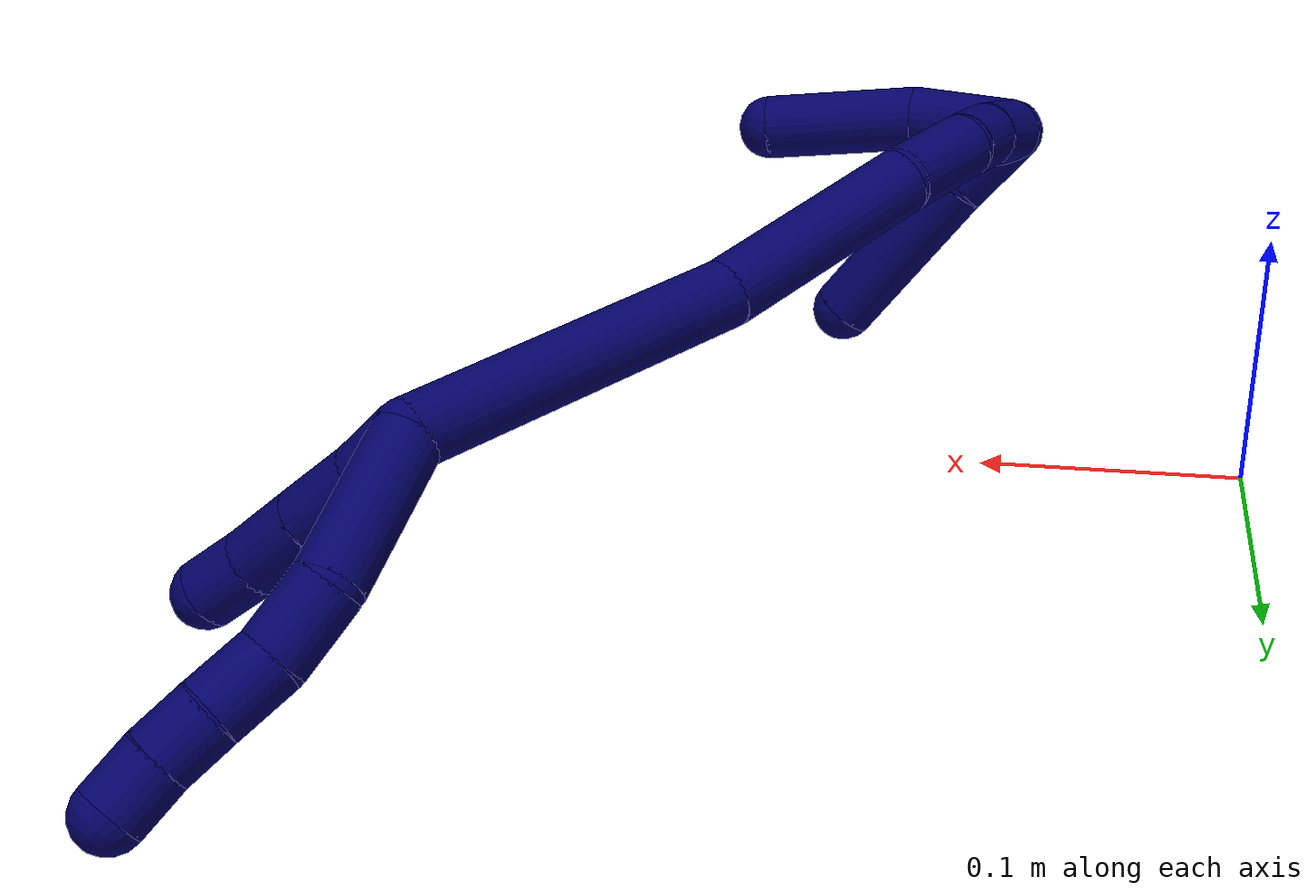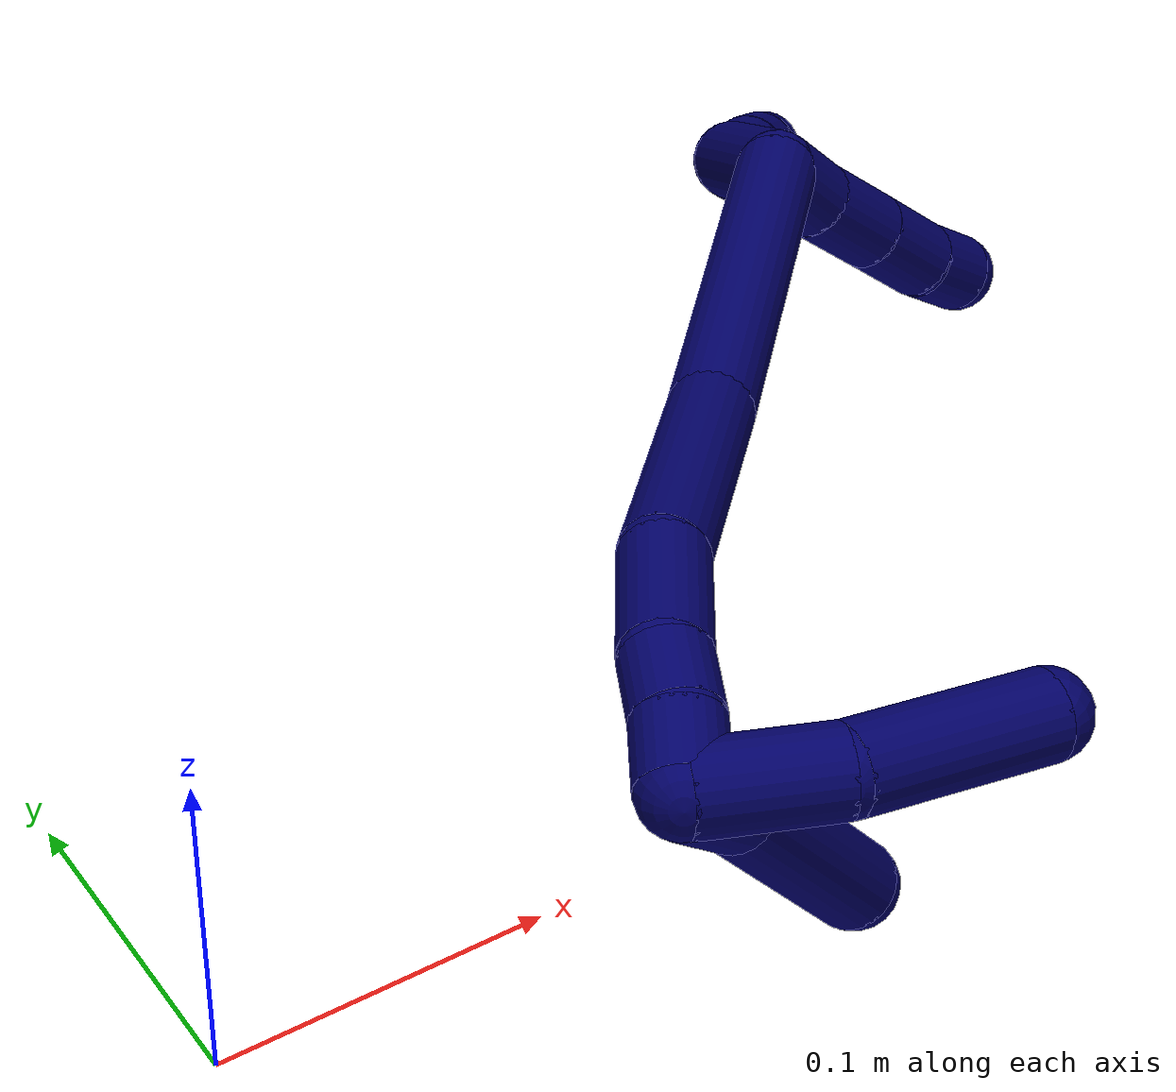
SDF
<sdf version="1.7">
 <world name="default">
  <model name="7">
   <static>0</static>
   <link name="7">
    <collision name="collision-cylinder-e_1_2_8">
     <pose>-0.006009 -0.004843 0.026787 0.17887 -0.217264 -0.019559</pose>
     <geometry><cylinder><radius>0.0125</radius><length>0.055753</length></cylinder></geometry>
     <surface>
      <friction><ode><mu>1.16</mu><mu2>1.16</mu2><slip1>0</slip1><slip2>0</slip2></ode></friction>
      <contact><ode><kp>1e+06</kp><kd>1</kd><max_vel>0</max_vel><min_depth>0.001</min_depth></ode></contact>
     </surface>
    </collision>
    <visual name="visual-cylinder-e_1_2_8">
     <pose>-0.006009 -0.004843 0.026787 0.17887 -0.217264 -0.019559</pose>
     <geometry><cylinder><radius>0.0125</radius><length>0.055753</length></cylinder></geometry>
     <material><ambient>0.003922 0 0.403922 1</ambient></material>
    </visual>
    <collision name="collision-cylinder-e_2_8_9">
     <pose>-0.015944 -0.007895 0.067108 -0.131578 -0.279992 0.018568</pose>
     <geometry><cylinder><radius>0.0125</radius><length>0.028411</length></cylinder></geometry>
     <surface>
      <friction><ode><mu>1.16</mu><mu2>1.16</mu2><slip1>0</slip1><slip2>0</slip2></ode></friction>
      <contact><ode><kp>1e+06</kp><kd>1</kd><max_vel>0</max_vel><min_depth>0.001</min_depth></ode></contact>
     </surface>
    </collision>
    <visual name="visual-cylinder-e_2_8_9">
     <pose>-0.015944 -0.007895 0.067108 -0.131578 -0.279992 0.018568</pose>
     <geometry><cylinder><radius>0.0125</radius><length>0.028411</length></cylinder></geometry>
     <material><ambient>0.003922 0 0.403922 1</ambient></material>
    </visual>
    <collision name="collision-cylinder-e_3_9_10">
     <pose>-0.020748 -0.003612 0.092613 -0.205236 -0.07177 0.007394</pose>
     <geometry><cylinder><radius>0.0125</radius><length>0.024517</length></cylinder></geometry>
     <surface>
      <friction><ode><mu>1.16</mu><mu2>1.16</mu2><slip1>0</slip1><slip2>0</slip2></ode></friction>
      <contact><ode><kp>1e+06</kp><kd>1</kd><max_vel>0</max_vel><min_depth>0.001</min_depth></ode></contact>
     </surface>
    </collision>
    <visual name="visual-cylinder-e_3_9_10">
     <pose>-0.020748 -0.003612 0.092613 -0.205236 -0.07177 0.007394</pose>
     <geometry><cylinder><radius>0.0125</radius><length>0.024517</length></cylinder></geometry>
     <material><ambient>0.003922 0 0.403922 1</ambient></material>
    </visual>
    <collision name="collision-cylinder-e_4_10_11">
     <pose>-0.023094 0.001494 0.114423 -0.259699 -0.14305 0.018712</pose>
     <geometry><cylinder><radius>0.0125</radius><length>0.020573</length></cylinder></geometry>
     <surface>
      <friction><ode><mu>1.16</mu><mu2>1.16</mu2><slip1>0</slip1><slip2>0</slip2></ode></friction>
      <contact><ode><kp>1e+06</kp><kd>1</kd><max_vel>0</max_vel><min_depth>0.001</min_depth></ode></contact>
     </surface>
    </collision>
    <visual name="visual-cylinder-e_4_10_11">
     <pose>-0.023094 0.001494 0.114423 -0.259699 -0.14305 0.018712</pose>
     <geometry><cylinder><radius>0.0125</radius><length>0.020573</length></cylinder></geometry>
     <material><ambient>0.003922 0 0.403922 1</ambient></material>
    </visual>
    <collision name="collision-cylinder-e_5_11_6">
     <pose>-0.026726 0.005723 0.134278 -0.159781 -0.210367 0.016904</pose>
     <geometry><cylinder><radius>0.0125</radius><length>0.020746</length></cylinder></geometry>
     <surface>
      <friction><ode><mu>1.16</mu><mu2>1.16</mu2><slip1>0</slip1><slip2>0</slip2></ode></friction>
      <contact><ode><kp>1e+06</kp><kd>1</kd><max_vel>0</max_vel><min_depth>0.001</min_depth></ode></contact>
     </surface>
    </collision>
    <visual name="visual-cylinder-e_5_11_6">
     <pose>-0.026726 0.005723 0.134278 -0.159781 -0.210367 0.016904</pose>
     <geometry><cylinder><radius>0.0125</radius><length>0.020746</length></cylinder></geometry>
     <material><ambient>0.003922 0 0.403922 1</ambient></material>
    </visual>
    <collision name="collision-cylinder-e_1_2_12">
     <pose>-0.005512 0.007273 0.006583 -0.835168 -0.511922 0.231187</pose>
     <geometry><cylinder><radius>0.0125</radius><length>0.022504</length></cylinder></geometry>
     <surface>
      <friction><ode><mu>1.16</mu><mu2>1.16</mu2><slip1>0</slip1><slip2>0</slip2></ode></friction>
      <contact><ode><kp>1e+06</kp><kd>1</kd><max_vel>0</max_vel><min_depth>0.001</min_depth></ode></contact>
     </surface>
    </collision>
    <visual name="visual-cylinder-e_1_2_12">
     <pose>-0.005512 0.007273 0.006583 -0.835168 -0.511922 0.231187</pose>
     <geometry><cylinder><radius>0.0125</radius><length>0.022504</length></cylinder></geometry>
     <material><ambient>0.003922 0 0.403922 1</ambient></material>
    </visual>
    <collision name="collision-cylinder-e_2_12_13">
     <pose>-0.01706 0.024754 0.021368 -0.893911 -0.431917 0.20953</pose>
     <geometry><cylinder><radius>0.0125</radius><length>0.02884</length></cylinder></geometry>
     <surface>
      <friction><ode><mu>1.16</mu><mu2>1.16</mu2><slip1>0</slip1><slip2>0</slip2></ode></friction>
      <contact><ode><kp>1e+06</kp><kd>1</kd><max_vel>0</max_vel><min_depth>0.001</min_depth></ode></contact>
     </surface>
    </collision>
    <visual name="visual-cylinder-e_2_12_13">
     <pose>-0.01706 0.024754 0.021368 -0.893911 -0.431917 0.20953</pose>
     <geometry><cylinder><radius>0.0125</radius><length>0.02884</length></cylinder></geometry>
     <material><ambient>0.003922 0 0.403922 1</ambient></material>
    </visual>
    <collision name="collision-cylinder-e_3_13_14">
     <pose>-0.02889 0.044568 0.037425 -0.88536 -0.436842 0.209674</pose>
     <geometry><cylinder><radius>0.0125</radius><length>0.027389</length></cylinder></geometry>
     <surface>
      <friction><ode><mu>1.16</mu><mu2>1.16</mu2><slip1>0</slip1><slip2>0</slip2></ode></friction>
      <contact><ode><kp>1e+06</kp><kd>1</kd><max_vel>0</max_vel><min_depth>0.001</min_depth></ode></contact>
     </surface>
    </collision>
    <visual name="visual-cylinder-e_3_13_14">
     <pose>-0.02889 0.044568 0.037425 -0.88536 -0.436842 0.209674</pose>
     <geometry><cylinder><radius>0.0125</radius><length>0.027389</length></cylinder></geometry>
     <material><ambient>0.003922 0 0.403922 1</ambient></material>
    </visual>
    <collision name="collision-cylinder-e_4_14_5">
     <pose>-0.038072 0.061364 0.052344 -0.794192 -0.324294 0.136991</pose>
     <geometry><cylinder><radius>0.0125</radius><length>0.021268</length></cylinder></geometry>
     <surface>
      <friction><ode><mu>1.16</mu><mu2>1.16</mu2><slip1>0</slip1><slip2>0</slip2></ode></friction>
      <contact><ode><kp>1e+06</kp><kd>1</kd><max_vel>0</max_vel><min_depth>0.001</min_depth></ode></contact>
     </surface>
    </collision>
    <visual name="visual-cylinder-e_4_14_5">
     <pose>-0.038072 0.061364 0.052344 -0.794192 -0.324294 0.136991</pose>
     <geometry><cylinder><radius>0.0125</radius><length>0.021268</length></cylinder></geometry>
     <material><ambient>0.003922 0 0.403922 1</ambient></material>
    </visual>
    <collision name="collision-cylinder-e_1_2_15">
     <pose>-0.019251 -0.009684 -0.062572 2.98805 -0.295161 -2.18658</pose>
     <geometry><cylinder><radius>0.0125</radius><length>0.132357</length></cylinder></geometry>
     <surface>
      <friction><ode><mu>1.16</mu><mu2>1.16</mu2><slip1>0</slip1><slip2>0</slip2></ode></friction>
      <contact><ode><kp>1e+06</kp><kd>1</kd><max_vel>0</max_vel><min_depth>0.001</min_depth></ode></contact>
     </surface>
    </collision>
    <visual name="visual-cylinder-e_1_2_15">
     <pose>-0.019251 -0.009684 -0.062572 2.98805 -0.295161 -2.18658</pose>
     <geometry><cylinder><radius>0.0125</radius><length>0.132357</length></cylinder></geometry>
     <material><ambient>0.003922 0 0.403922 1</ambient></material>
    </visual>
    <collision name="collision-cylinder-e_2_15_16">
     <pose>-0.044618 -0.026095 -0.168106 2.98628 -0.139722 -1.4648</pose>
     <geometry><cylinder><radius>0.0125</radius><length>0.087826</length></cylinder></geometry>
     <surface>
      <friction><ode><mu>1.16</mu><mu2>1.16</mu2><slip1>0</slip1><slip2>0</slip2></ode></friction>
      <contact><ode><kp>1e+06</kp><kd>1</kd><max_vel>0</max_vel><min_depth>0.001</min_depth></ode></contact>
     </surface>
    </collision>
    <visual name="visual-cylinder-e_2_15_16">
     <pose>-0.044618 -0.026095 -0.168106 2.98628 -0.139722 -1.4648</pose>
     <geometry><cylinder><radius>0.0125</radius><length>0.087826</length></cylinder></geometry>
     <material><ambient>0.003922 0 0.403922 1</ambient></material>
    </visual>
    <collision name="collision-cylinder-e_3_16_17">
     <pose>-0.056695 -0.032251 -0.229852 -3.11124 -0.307176 2.94611</pose>
     <geometry><cylinder><radius>0.0125</radius><length>0.039433</length></cylinder></geometry>
     <surface>
      <friction><ode><mu>1.16</mu><mu2>1.16</mu2><slip1>0</slip1><slip2>0</slip2></ode></friction>
      <contact><ode><kp>1e+06</kp><kd>1</kd><max_vel>0</max_vel><min_depth>0.001</min_depth></ode></contact>
     </surface>
    </collision>
    <visual name="visual-cylinder-e_3_16_17">
     <pose>-0.056695 -0.032251 -0.229852 -3.11124 -0.307176 2.94611</pose>
     <geometry><cylinder><radius>0.0125</radius><length>0.039433</length></cylinder></geometry>
     <material><ambient>0.003922 0 0.403922 1</ambient></material>
    </visual>
    <collision name="collision-cylinder-e_4_17_18">
     <pose>-0.06697 -0.029752 -0.257604 -2.92973 -0.439566 2.25312</pose>
     <geometry><cylinder><radius>0.0125</radius><length>0.020271</length></cylinder></geometry>
     <surface>
      <friction><ode><mu>1.16</mu><mu2>1.16</mu2><slip1>0</slip1><slip2>0</slip2></ode></friction>
      <contact><ode><kp>1e+06</kp><kd>1</kd><max_vel>0</max_vel><min_depth>0.001</min_depth></ode></contact>
     </surface>
    </collision>
    <visual name="visual-cylinder-e_4_17_18">
     <pose>-0.06697 -0.029752 -0.257604 -2.92973 -0.439566 2.25312</pose>
     <geometry><cylinder><radius>0.0125</radius><length>0.020271</length></cylinder></geometry>
     <material><ambient>0.003922 0 0.403922 1</ambient></material>
    </visual>
    <collision name="collision-cylinder-e_5_18_1">
     <pose>-0.076707 -0.026674 -0.274961 -3.00545 -0.569698 2.68407</pose>
     <geometry><cylinder><radius>0.0125</radius><length>0.020112</length></cylinder></geometry>
     <surface>
      <friction><ode><mu>1.16</mu><mu2>1.16</mu2><slip1>0</slip1><slip2>0</slip2></ode></friction>
      <contact><ode><kp>1e+06</kp><kd>1</kd><max_vel>0</max_vel><min_depth>0.001</min_depth></ode></contact>
     </surface>
    </collision>
    <visual name="visual-cylinder-e_5_18_1">
     <pose>-0.076707 -0.026674 -0.274961 -3.00545 -0.569698 2.68407</pose>
     <geometry><cylinder><radius>0.0125</radius><length>0.020112</length></cylinder></geometry>
     <material><ambient>0.003922 0 0.403922 1</ambient></material>
    </visual>
    <collision name="collision-cylinder-e_1_1_19">
     <pose>-0.088365 -0.017908 -0.272021 -0.591889 -0.428378 0.132453</pose>
     <geometry><cylinder><radius>0.0125</radius><length>0.030016</length></cylinder></geometry>
     <surface>
      <friction><ode><mu>1.16</mu><mu2>1.16</mu2><slip1>0</slip1><slip2>0</slip2></ode></friction>
      <contact><ode><kp>1e+06</kp><kd>1</kd><max_vel>0</max_vel><min_depth>0.001</min_depth></ode></contact>
     </surface>
    </collision>
    <visual name="visual-cylinder-e_1_1_19">
     <pose>-0.088365 -0.017908 -0.272021 -0.591889 -0.428378 0.132453</pose>
     <geometry><cylinder><radius>0.0125</radius><length>0.030016</length></cylinder></geometry>
     <material><ambient>0.003922 0 0.403922 1</ambient></material>
    </visual>
    <collision name="collision-cylinder-e_2_19_4">
     <pose>-0.11379 0.009094 -0.238773 -0.724138 -0.580473 0.225295</pose>
     <geometry><cylinder><radius>0.0125</radius><length>0.069984</length></cylinder></geometry>
     <surface>
      <friction><ode><mu>1.16</mu><mu2>1.16</mu2><slip1>0</slip1><slip2>0</slip2></ode></friction>
      <contact><ode><kp>1e+06</kp><kd>1</kd><max_vel>0</max_vel><min_depth>0.001</min_depth></ode></contact>
     </surface>
    </collision>
    <visual name="visual-cylinder-e_2_19_4">
     <pose>-0.11379 0.009094 -0.238773 -0.724138 -0.580473 0.225295</pose>
     <geometry><cylinder><radius>0.0125</radius><length>0.069984</length></cylinder></geometry>
     <material><ambient>0.003922 0 0.403922 1</ambient></material>
    </visual>
    <collision name="collision-cylinder-e_1_1_20">
     <pose>-0.078957 -0.006087 -0.278835 -1.34257 0.157728 -0.125387</pose>
     <geometry><cylinder><radius>0.0125</radius><length>0.040412</length></cylinder></geometry>
     <surface>
      <friction><ode><mu>1.16</mu><mu2>1.16</mu2><slip1>0</slip1><slip2>0</slip2></ode></friction>
      <contact><ode><kp>1e+06</kp><kd>1</kd><max_vel>0</max_vel><min_depth>0.001</min_depth></ode></contact>
     </surface>
    </collision>
    <visual name="visual-cylinder-e_1_1_20">
     <pose>-0.078957 -0.006087 -0.278835 -1.34257 0.157728 -0.125387</pose>
     <geometry><cylinder><radius>0.0125</radius><length>0.040412</length></cylinder></geometry>
     <material><ambient>0.003922 0 0.403922 1</ambient></material>
    </visual>
    <collision name="collision-cylinder-e_2_20_3">
     <pose>-0.071581 0.038868 -0.259525 -1.04535 0.141518 -0.081623</pose>
     <geometry><cylinder><radius>0.0125</radius><length>0.059588</length></cylinder></geometry>
     <surface>
      <friction><ode><mu>1.16</mu><mu2>1.16</mu2><slip1>0</slip1><slip2>0</slip2></ode></friction>
      <contact><ode><kp>1e+06</kp><kd>1</kd><max_vel>0</max_vel><min_depth>0.001</min_depth></ode></contact>
     </surface>
    </collision>
    <visual name="visual-cylinder-e_2_20_3">
     <pose>-0.071581 0.038868 -0.259525 -1.04535 0.141518 -0.081623</pose>
     <geometry><cylinder><radius>0.0125</radius><length>0.059588</length></cylinder></geometry>
     <material><ambient>0.003922 0 0.403922 1</ambient></material>
    </visual>
    <collision name="collision-sphere-3">
     <pose>-0.067379 0.064385 -0.24473 0 -0 0</pose>
     <geometry><sphere><radius>0.0125</radius></sphere></geometry>
     <surface>
      <friction><ode><mu>1.16</mu><mu2>1.16</mu2><slip1>0</slip1><slip2>0</slip2></ode></friction>
      <contact><ode><kp>1e+06</kp><kd>1</kd><max_vel>0</max_vel><min_depth>0.001</min_depth></ode></contact>
     </surface>
    </collision>
    <visual name="visual-sphere-3">
     <pose>-0.067379 0.064385 -0.24473 0 -0 0</pose>
     <geometry><sphere><radius>0.0125</radius></sphere></geometry>
     <material><ambient>0.003922 0 0.403922 1</ambient></material>
    </visual>
    <collision name="collision-sphere-20">
     <pose>-0.075783 0.013351 -0.27432 0 -0 0</pose>
     <geometry><sphere><radius>0.0125</radius></sphere></geometry>
     <surface>
      <friction><ode><mu>1.16</mu><mu2>1.16</mu2><slip1>0</slip1><slip2>0</slip2></ode></friction>
      <contact><ode><kp>1e+06</kp><kd>1</kd><max_vel>0</max_vel><min_depth>0.001</min_depth></ode></contact>
     </surface>
    </collision>
    <visual name="visual-sphere-20">
     <pose>-0.075783 0.013351 -0.27432 0 -0 0</pose>
     <geometry><sphere><radius>0.0125</radius></sphere></geometry>
     <material><ambient>0.003922 0 0.403922 1</ambient></material>
    </visual>
    <collision name="collision-sphere-4">
     <pose>-0.13298 0.028478 -0.216855 0 -0 0</pose>
     <geometry><sphere><radius>0.0125</radius></sphere></geometry>
     <surface>
      <friction><ode><mu>1.16</mu><mu2>1.16</mu2><slip1>0</slip1><slip2>0</slip2></ode></friction>
      <contact><ode><kp>1e+06</kp><kd>1</kd><max_vel>0</max_vel><min_depth>0.001</min_depth></ode></contact>
     </surface>
    </collision>
    <visual name="visual-sphere-4">
     <pose>-0.13298 0.028478 -0.216855 0 -0 0</pose>
     <geometry><sphere><radius>0.0125</radius></sphere></geometry>
     <material><ambient>0.003922 0 0.403922 1</ambient></material>
    </visual>
    <collision name="collision-sphere-6">
     <pose>-0.028892 0.007337 0.144293 0 -0 0</pose>
     <geometry><sphere><radius>0.0125</radius></sphere></geometry>
     <surface>
      <friction><ode><mu>1.16</mu><mu2>1.16</mu2><slip1>0</slip1><slip2>0</slip2></ode></friction>
      <contact><ode><kp>1e+06</kp><kd>1</kd><max_vel>0</max_vel><min_depth>0.001</min_depth></ode></contact>
     </surface>
    </collision>
    <visual name="visual-sphere-6">
     <pose>-0.028892 0.007337 0.144293 0 -0 0</pose>
     <geometry><sphere><radius>0.0125</radius></sphere></geometry>
     <material><ambient>0.003922 0 0.403922 1</ambient></material>
    </visual>
    <collision name="collision-sphere-11">
     <pose>-0.02456 0.004109 0.124263 0 -0 0</pose>
     <geometry><sphere><radius>0.0125</radius></sphere></geometry>
     <surface>
      <friction><ode><mu>1.16</mu><mu2>1.16</mu2><slip1>0</slip1><slip2>0</slip2></ode></friction>
      <contact><ode><kp>1e+06</kp><kd>1</kd><max_vel>0</max_vel><min_depth>0.001</min_depth></ode></contact>
     </surface>
    </collision>
    <visual name="visual-sphere-11">
     <pose>-0.02456 0.004109 0.124263 0 -0 0</pose>
     <geometry><sphere><radius>0.0125</radius></sphere></geometry>
     <material><ambient>0.003922 0 0.403922 1</ambient></material>
    </visual>
    <collision name="collision-sphere-10">
     <pose>-0.021627 -0.00112 0.104583 0 -0 0</pose>
     <geometry><sphere><radius>0.0125</radius></sphere></geometry>
     <surface>
      <friction><ode><mu>1.16</mu><mu2>1.16</mu2><slip1>0</slip1><slip2>0</slip2></ode></friction>
      <contact><ode><kp>1e+06</kp><kd>1</kd><max_vel>0</max_vel><min_depth>0.001</min_depth></ode></contact>
     </surface>
    </collision>
    <visual name="visual-sphere-10">
     <pose>-0.021627 -0.00112 0.104583 0 -0 0</pose>
     <geometry><sphere><radius>0.0125</radius></sphere></geometry>
     <material><ambient>0.003922 0 0.403922 1</ambient></material>
    </visual>
    <collision name="collision-sphere-9">
     <pose>-0.019869 -0.006104 0.080642 0 -0 0</pose>
     <geometry><sphere><radius>0.0125</radius></sphere></geometry>
     <surface>
      <friction><ode><mu>1.16</mu><mu2>1.16</mu2><slip1>0</slip1><slip2>0</slip2></ode></friction>
      <contact><ode><kp>1e+06</kp><kd>1</kd><max_vel>0</max_vel><min_depth>0.001</min_depth></ode></contact>
     </surface>
    </collision>
    <visual name="visual-sphere-9">
     <pose>-0.019869 -0.006104 0.080642 0 -0 0</pose>
     <geometry><sphere><radius>0.0125</radius></sphere></geometry>
     <material><ambient>0.003922 0 0.403922 1</ambient></material>
    </visual>
    <collision name="collision-sphere-2">
     <geometry><sphere><radius>0.0125</radius></sphere></geometry>
     <surface>
      <friction><ode><mu>1.16</mu><mu2>1.16</mu2><slip1>0</slip1><slip2>0</slip2></ode></friction>
      <contact><ode><kp>1e+06</kp><kd>1</kd><max_vel>0</max_vel><min_depth>0.001</min_depth></ode></contact>
     </surface>
    </collision>
    <visual name="visual-sphere-2">
     <geometry><sphere><radius>0.0125</radius></sphere></geometry>
     <material><ambient>0.003922 0 0.403922 1</ambient></material>
    </visual>
    <collision name="collision-sphere-19">
     <pose>-0.094599 -0.010291 -0.260691 0 -0 0</pose>
     <geometry><sphere><radius>0.0125</radius></sphere></geometry>
     <surface>
      <friction><ode><mu>1.16</mu><mu2>1.16</mu2><slip1>0</slip1><slip2>0</slip2></ode></friction>
      <contact><ode><kp>1e+06</kp><kd>1</kd><max_vel>0</max_vel><min_depth>0.001</min_depth></ode></contact>
     </surface>
    </collision>
    <visual name="visual-sphere-19">
     <pose>-0.094599 -0.010291 -0.260691 0 -0 0</pose>
     <geometry><sphere><radius>0.0125</radius></sphere></geometry>
     <material><ambient>0.003922 0 0.403922 1</ambient></material>
    </visual>
    <collision name="collision-sphere-8">
     <pose>-0.012018 -0.009686 0.053574 0 -0 0</pose>
     <geometry><sphere><radius>0.0125</radius></sphere></geometry>
     <surface>
      <friction><ode><mu>1.16</mu><mu2>1.16</mu2><slip1>0</slip1><slip2>0</slip2></ode></friction>
      <contact><ode><kp>1e+06</kp><kd>1</kd><max_vel>0</max_vel><min_depth>0.001</min_depth></ode></contact>
     </surface>
    </collision>
    <visual name="visual-sphere-8">
     <pose>-0.012018 -0.009686 0.053574 0 -0 0</pose>
     <geometry><sphere><radius>0.0125</radius></sphere></geometry>
     <material><ambient>0.003922 0 0.403922 1</ambient></material>
    </visual>
    <collision name="collision-sphere-12">
     <pose>-0.011024 0.014546 0.013165 0 -0 0</pose>
     <geometry><sphere><radius>0.0125</radius></sphere></geometry>
     <surface>
      <friction><ode><mu>1.16</mu><mu2>1.16</mu2><slip1>0</slip1><slip2>0</slip2></ode></friction>
      <contact><ode><kp>1e+06</kp><kd>1</kd><max_vel>0</max_vel><min_depth>0.001</min_depth></ode></contact>
     </surface>
    </collision>
    <visual name="visual-sphere-12">
     <pose>-0.011024 0.014546 0.013165 0 -0 0</pose>
     <geometry><sphere><radius>0.0125</radius></sphere></geometry>
     <material><ambient>0.003922 0 0.403922 1</ambient></material>
    </visual>
    <collision name="collision-sphere-13">
     <pose>-0.023096 0.034962 0.029571 0 -0 0</pose>
     <geometry><sphere><radius>0.0125</radius></sphere></geometry>
     <surface>
      <friction><ode><mu>1.16</mu><mu2>1.16</mu2><slip1>0</slip1><slip2>0</slip2></ode></friction>
      <contact><ode><kp>1e+06</kp><kd>1</kd><max_vel>0</max_vel><min_depth>0.001</min_depth></ode></contact>
     </surface>
    </collision>
    <visual name="visual-sphere-13">
     <pose>-0.023096 0.034962 0.029571 0 -0 0</pose>
     <geometry><sphere><radius>0.0125</radius></sphere></geometry>
     <material><ambient>0.003922 0 0.403922 1</ambient></material>
    </visual>
    <collision name="collision-sphere-14">
     <pose>-0.034684 0.054174 0.04528 0 -0 0</pose>
     <geometry><sphere><radius>0.0125</radius></sphere></geometry>
     <surface>
      <friction><ode><mu>1.16</mu><mu2>1.16</mu2><slip1>0</slip1><slip2>0</slip2></ode></friction>
      <contact><ode><kp>1e+06</kp><kd>1</kd><max_vel>0</max_vel><min_depth>0.001</min_depth></ode></contact>
     </surface>
    </collision>
    <visual name="visual-sphere-14">
     <pose>-0.034684 0.054174 0.04528 0 -0 0</pose>
     <geometry><sphere><radius>0.0125</radius></sphere></geometry>
     <material><ambient>0.003922 0 0.403922 1</ambient></material>
    </visual>
    <collision name="collision-sphere-5">
     <pose>-0.041461 0.068554 0.059409 0 -0 0</pose>
     <geometry><sphere><radius>0.0125</radius></sphere></geometry>
     <surface>
      <friction><ode><mu>1.16</mu><mu2>1.16</mu2><slip1>0</slip1><slip2>0</slip2></ode></friction>
      <contact><ode><kp>1e+06</kp><kd>1</kd><max_vel>0</max_vel><min_depth>0.001</min_depth></ode></contact>
     </surface>
    </collision>
    <visual name="visual-sphere-5">
     <pose>-0.041461 0.068554 0.059409 0 -0 0</pose>
     <geometry><sphere><radius>0.0125</radius></sphere></geometry>
     <material><ambient>0.003922 0 0.403922 1</ambient></material>
    </visual>
    <collision name="collision-sphere-15">
     <pose>-0.038502 -0.019368 -0.125144 0 -0 0</pose>
     <geometry><sphere><radius>0.0125</radius></sphere></geometry>
     <surface>
      <friction><ode><mu>1.16</mu><mu2>1.16</mu2><slip1>0</slip1><slip2>0</slip2></ode></friction>
      <contact><ode><kp>1e+06</kp><kd>1</kd><max_vel>0</max_vel><min_depth>0.001</min_depth></ode></contact>
     </surface>
    </collision>
    <visual name="visual-sphere-15">
     <pose>-0.038502 -0.019368 -0.125144 0 -0 0</pose>
     <geometry><sphere><radius>0.0125</radius></sphere></geometry>
     <material><ambient>0.003922 0 0.403922 1</ambient></material>
    </visual>
    <collision name="collision-sphere-16">
     <pose>-0.050733 -0.032821 -0.211067 0 -0 0</pose>
     <geometry><sphere><radius>0.0125</radius></sphere></geometry>
     <surface>
      <friction><ode><mu>1.16</mu><mu2>1.16</mu2><slip1>0</slip1><slip2>0</slip2></ode></friction>
      <contact><ode><kp>1e+06</kp><kd>1</kd><max_vel>0</max_vel><min_depth>0.001</min_depth></ode></contact>
     </surface>
    </collision>
    <visual name="visual-sphere-16">
     <pose>-0.050733 -0.032821 -0.211067 0 -0 0</pose>
     <geometry><sphere><radius>0.0125</radius></sphere></geometry>
     <material><ambient>0.003922 0 0.403922 1</ambient></material>
    </visual>
    <collision name="collision-sphere-17">
     <pose>-0.062657 -0.031681 -0.248637 0 -0 0</pose>
     <geometry><sphere><radius>0.0125</radius></sphere></geometry>
     <surface>
      <friction><ode><mu>1.16</mu><mu2>1.16</mu2><slip1>0</slip1><slip2>0</slip2></ode></friction>
      <contact><ode><kp>1e+06</kp><kd>1</kd><max_vel>0</max_vel><min_depth>0.001</min_depth></ode></contact>
     </surface>
    </collision>
    <visual name="visual-sphere-17">
     <pose>-0.062657 -0.031681 -0.248637 0 -0 0</pose>
     <geometry><sphere><radius>0.0125</radius></sphere></geometry>
     <material><ambient>0.003922 0 0.403922 1</ambient></material>
    </visual>
    <collision name="collision-sphere-18">
     <pose>-0.071283 -0.027823 -0.266571 0 -0 0</pose>
     <geometry><sphere><radius>0.0125</radius></sphere></geometry>
     <surface>
      <friction><ode><mu>1.16</mu><mu2>1.16</mu2><slip1>0</slip1><slip2>0</slip2></ode></friction>
      <contact><ode><kp>1e+06</kp><kd>1</kd><max_vel>0</max_vel><min_depth>0.001</min_depth></ode></contact>
     </surface>
    </collision>
    <visual name="visual-sphere-18">
     <pose>-0.071283 -0.027823 -0.266571 0 -0 0</pose>
     <geometry><sphere><radius>0.0125</radius></sphere></geometry>
     <material><ambient>0.003922 0 0.403922 1</ambient></material>
    </visual>
    <collision name="collision-sphere-1">
     <pose>-0.082131 -0.025525 -0.28335 0 -0 0</pose>
     <geometry><sphere><radius>0.0125</radius></sphere></geometry>
     <surface>
      <friction><ode><mu>1.16</mu><mu2>1.16</mu2><slip1>0</slip1><slip2>0</slip2></ode></friction>
      <contact><ode><kp>1e+06</kp><kd>1</kd><max_vel>0</max_vel><min_depth>0.001</min_depth></ode></contact>
     </surface>
    </collision>
    <visual name="visual-sphere-1">
     <pose>-0.082131 -0.025525 -0.28335 0 -0 0</pose>
     <geometry><sphere><radius>0.0125</radius></sphere></geometry>
     <material><ambient>0.003922 0 0.403922 1</ambient></material>
    </visual>
    <inertial>
     <pose>-0.045624 -0.001128 -0.107676 0 -0 0</pose>
     <mass>0.75</mass>
     <inertia><ixx>-0.000244</ixx><ixy>0</ixy><ixz>0</ixz><iyy>5e-06</iyy><iyz>0</iyz><izz>8.5e-05</izz></inertia>
    </inertial>
   </link>
   <pose>0.282634 0.156461 0.088731 -2.80466 -1.20792 0.645767</pose>
  </model>
 </world>
</sdf>
